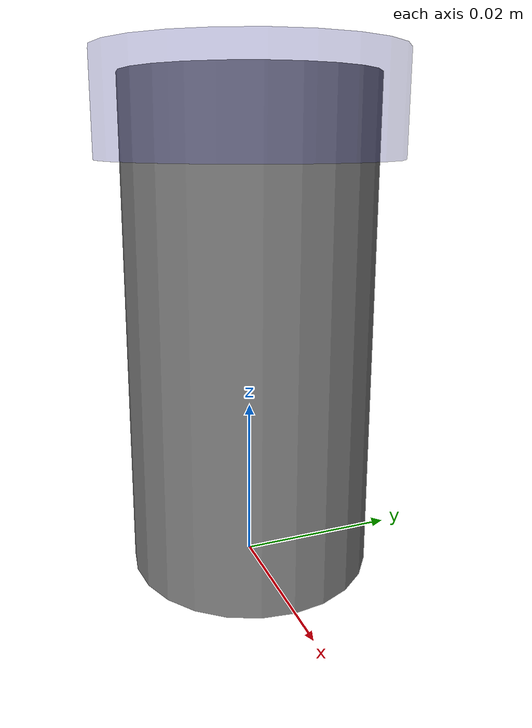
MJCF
<mujoco model="screw test">
    <compiler angle="radian" />
    <extension>
        <plugin plugin="mjlab.sdf.thread">
            <instance name="bolt">
                <config key="pitch" value="0.003"/>
                <config key="radius" value="0.0155"/>
                <config key="low" value="-1.0"/>
                <config key="high" value="0.8"/>
                <config key="gauge" value="0.001"/>
            </instance>
            <instance name="nut">
                <config key="pitch" value="0.003"/>
                <config key="radius" value="0.0155"/>
                <config key="low" value="-1.0"/>
                <config key="high" value="0.8"/>
                <config key="gauge" value="0.0005"/>
            </instance>
        </plugin>
    </extension>

    <option integrator="implicitfast" impratio="1" cone="elliptic" noslip_iterations="2" />
    <asset>
        <mesh name="bolt">
            <plugin instance="bolt"/>
        </mesh>
        <mesh name="nut">
            <plugin instance="nut"/>
        </mesh>
    </asset>
    <visual>
        <global azimuth="220" elevation="-30"/>
    </visual>

    <worldbody>
        <body name="cap" pos="0 0 0.0565">
            <freejoint name="cap" />
            <geom type="cylinder" size="0.018 0.006" rgba="0.3 0.3 0.7 0.3" contype="0" conaffinity="0" mass="0"/>
            <geom type="sdf" name="nut" mesh="nut" rgba="1 0 0 1" contype="0" conaffinity="0" group="3">
                <plugin instance="nut"/>
            </geom>
        </body>

        <body name="body">
            <geom name="body" type="cylinder" size="0.015 0.03" pos="0 0 0.03" rgba="0.5 0.5 0.5 1" density="100" />
            <geom type="sdf" name="bolt" mesh="bolt" rgba="0 1 0 1" pos="0 0 0.055" contype="0" conaffinity="0" group="3">
                <plugin instance="bolt"/>
            </geom>
        </body>

    </worldbody>
    <contact>
        <pair geom1="nut" geom2="bolt" friction="0.1" solref="0.002 1"/>
        <pair geom1="nut" geom2="body" friction="0.1" solref="0.002 1"/>
    </contact>
    <actuator>
        <motor joint="cap" ctrlrange="-1 1" gear="0 0 0 0 0 0.01" />
    </actuator>
</mujoco>
